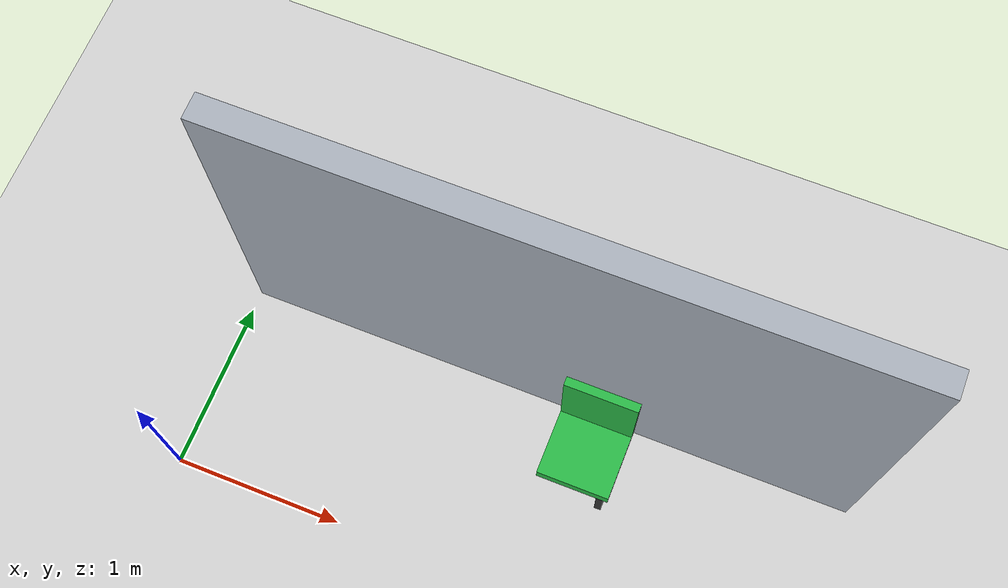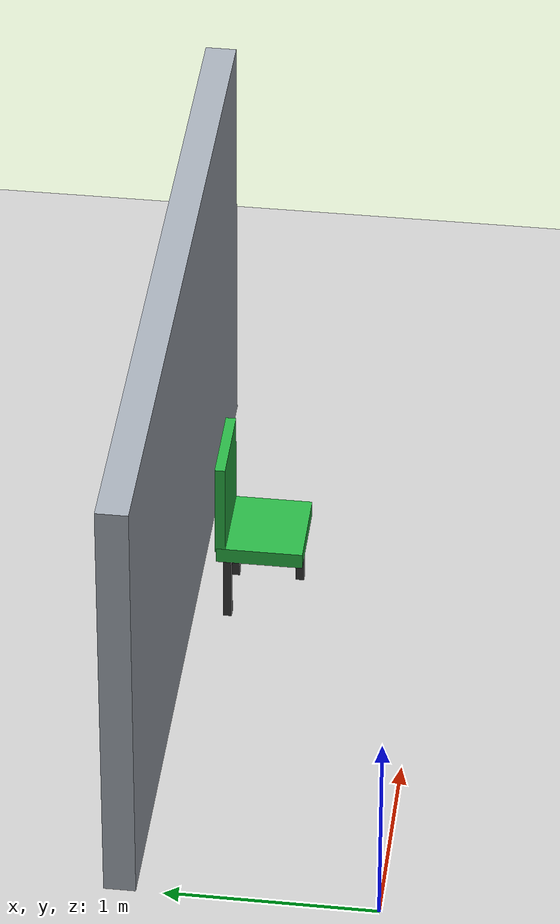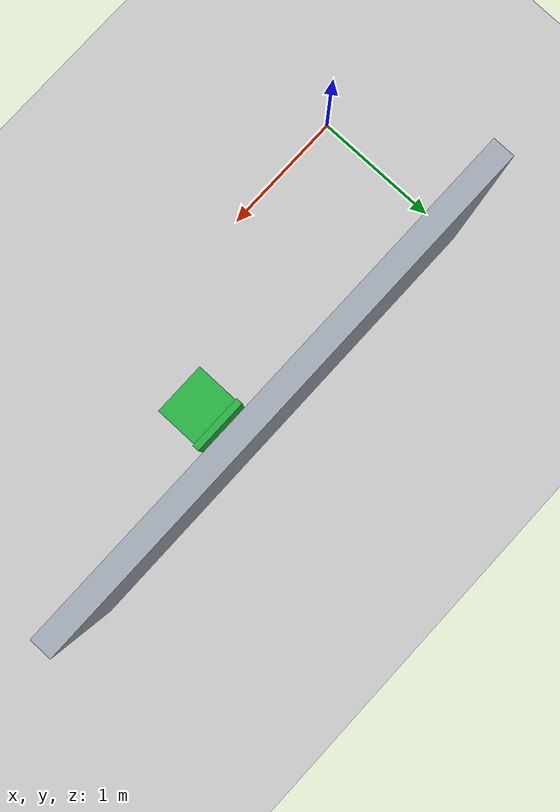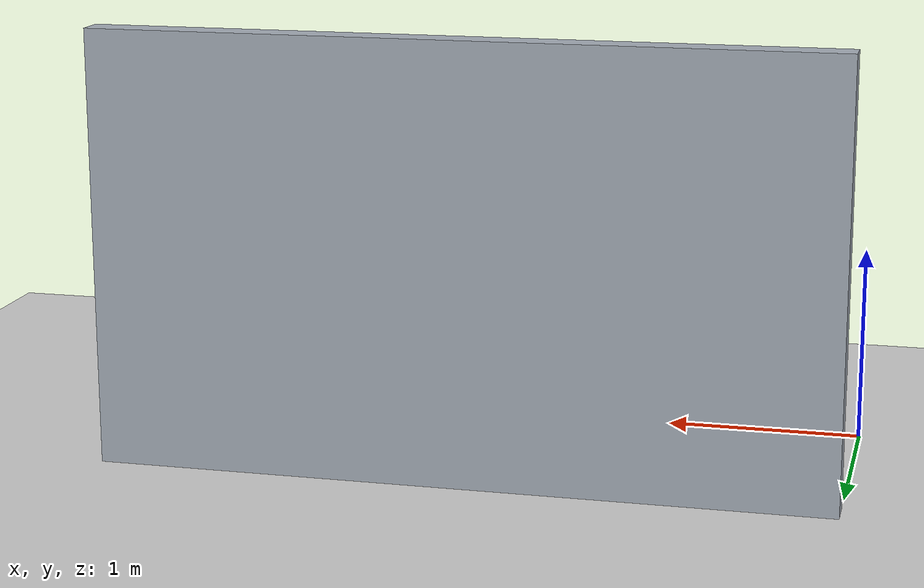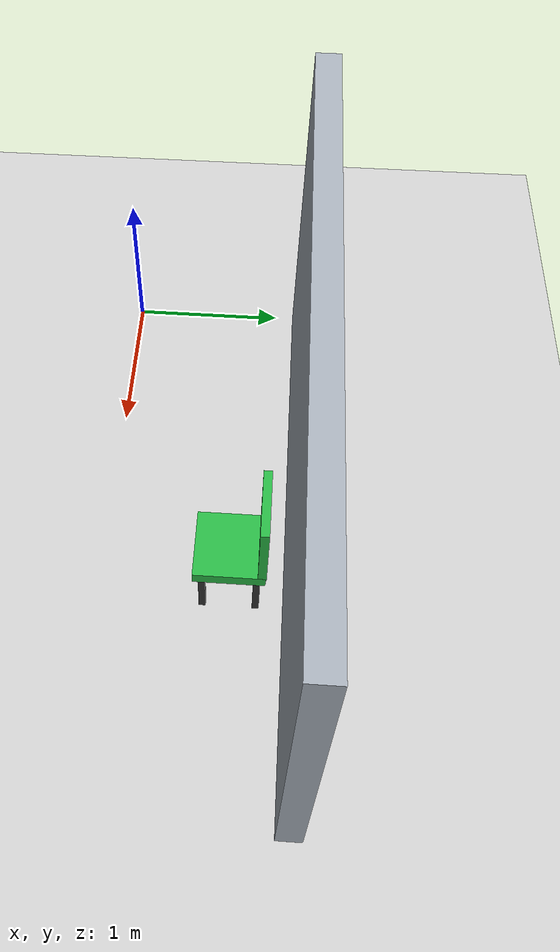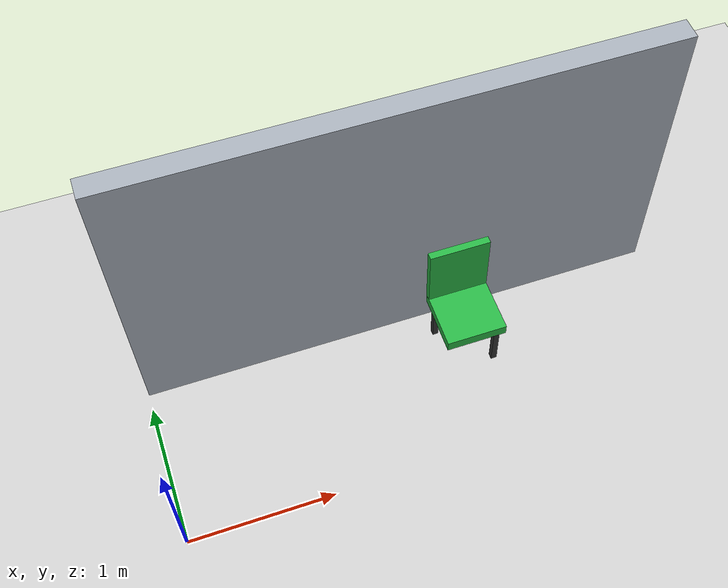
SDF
<sdf version="1.9">
 <world name="default">
  <model name="ground_plane">
   <static>true</static>
   <pose>4.95 0 -0.05 0 0 0</pose>
   <link name="body">
    <collision name="collision"><geometry><box><size>13.9 12 0.1</size></box></geometry></collision>
    <visual name="visual">
     <geometry><box><size>13.9 12 0.1</size></box></geometry>
     <material><ambient>0.8 0.8 0.8 1</ambient><diffuse>0.8 0.8 0.8 1</diffuse></material>
    </visual>
   </link>
  </model>
  <model name="hall_1_1">
   <static>true</static>
   <pose>1.85 1.2 1.1 0 0 0</pose>
   <link name="body">
    <collision name="collision"><geometry><box><size>3.7 0.15 2.2</size></box></geometry></collision>
    <visual name="visual">
     <geometry><box><size>3.7 0.15 2.2</size></box></geometry>
     <material><ambient>0.65 0.68 0.72 1</ambient><diffuse>0.65 0.68 0.72 1</diffuse></material>
    </visual>
   </link>
  </model>
  <model name="chair_seat">
   <static>true</static>
   <pose>2.2 0.7999999999999999 0.4 0 0 0</pose>
   <link name="body">
    <collision name="collision"><geometry><box><size>0.42 0.42 0.08</size></box></geometry></collision>
    <visual name="visual">
     <geometry><box><size>0.42 0.42 0.08</size></box></geometry>
     <material><ambient>0.16 0.71 0.27 1</ambient><diffuse>0.16 0.71 0.27 1</diffuse></material>
    </visual>
   </link>
  </model>
  <model name="chair_back">
   <static>true</static>
   <pose>2.2 0.99 0.67 0 0 0</pose>
   <link name="body">
    <collision name="collision"><geometry><box><size>0.42 0.05 0.5</size></box></geometry></collision>
    <visual name="visual">
     <geometry><box><size>0.42 0.05 0.5</size></box></geometry>
     <material><ambient>0.16 0.71 0.27 1</ambient><diffuse>0.16 0.71 0.27 1</diffuse></material>
    </visual>
   </link>
  </model>
  <model name="chair_leg_-0.16_0.16">
   <static>true</static>
   <pose>2.04 0.96 0.19 0 0 0</pose>
   <link name="body">
    <collision name="collision"><geometry><box><size>0.04 0.04 0.38</size></box></geometry></collision>
    <visual name="visual">
     <geometry><box><size>0.04 0.04 0.38</size></box></geometry>
     <material><ambient>0.2 0.2 0.2 1</ambient><diffuse>0.2 0.2 0.2 1</diffuse></material>
    </visual>
   </link>
  </model>
  <model name="chair_leg_0.16_-0.16">
   <static>true</static>
   <pose>2.3600000000000003 0.6399999999999999 0.19 0 0 0</pose>
   <link name="body">
    <collision name="collision"><geometry><box><size>0.04 0.04 0.38</size></box></geometry></collision>
    <visual name="visual">
     <geometry><box><size>0.04 0.04 0.38</size></box></geometry>
     <material><ambient>0.2 0.2 0.2 1</ambient><diffuse>0.2 0.2 0.2 1</diffuse></material>
    </visual>
   </link>
  </model>
  <model name="chair_leg_0.16_0.16">
   <static>true</static>
   <pose>2.3600000000000003 0.96 0.19 0 0 0</pose>
   <link name="body">
    <collision name="collision"><geometry><box><size>0.04 0.04 0.38</size></box></geometry></collision>
    <visual name="visual">
     <geometry><box><size>0.04 0.04 0.38</size></box></geometry>
     <material><ambient>0.2 0.2 0.2 1</ambient><diffuse>0.2 0.2 0.2 1</diffuse></material>
    </visual>
   </link>
  </model>
 </world>
</sdf>
